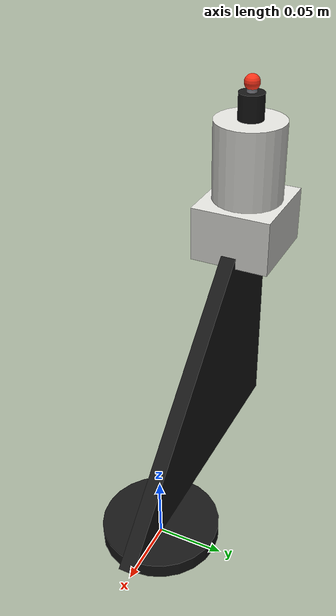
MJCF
<mujoco model="screwdriver_tool">
  <compiler angle="radian" autolimits="true"/>

  <asset>
    <material name="sd_black" rgba="0.09 0.09 0.09 1" specular="0.3" shininess="0.3"/>
    <material name="sd_white" rgba="0.88 0.88 0.86 1" specular="0.4" shininess="0.4"/>
    <material name="sd_steel" rgba="0.55 0.55 0.58 1" specular="0.8" shininess="0.7"/>

    <!-- 12 mm plate in the x-z plane; convex hull of the 6 corners is the prism. -->
    <mesh name="sd_gusset_mesh"
          vertex=" 0.055 -0.006 0.012   0.055  0.006 0.012
                  -0.185 -0.006 0.012  -0.185  0.006 0.012
                  -0.185 -0.006 0.245  -0.185  0.006 0.245"/>
  </asset>

  <worldbody>
    <body name="tool">
      <!-- adapter disc, not a wide square: a square corner sweeps into the wrist_1 envelope -->
      <geom name="mount_plate" type="cylinder" size="0.045 0.006" pos="0 0 0.006"
            mass="0.6" material="sd_black"/>
      <geom name="gusset" type="mesh" mesh="sd_gusset_mesh" mass="1.2" material="sd_black"/>
      <geom name="holder" type="box" size="0.035 0.032 0.022" pos="-0.156 0 0.196"
            mass="0.4" material="sd_white"/>
      <geom name="spindle" type="cylinder" size="0.028 0.031" pos="-0.156 0 0.249"
            mass="1.4" material="sd_white"/>
      <geom name="shaft" type="cylinder" size="0.010 0.010" pos="-0.156 0 0.290"
            mass="0.10" material="sd_black"/>
      <geom name="bit" type="cylinder" size="0.004 0.0035" pos="-0.156 0 0.3035"
            mass="0.02" material="sd_steel"/>
      <site name="tcp" pos="-0.156 0 0.307" size="0.006" rgba="1 0.2 0.1 0.9"/>
    </body>
  </worldbody>

  <!-- The whole tool's reaction on the flange, referred to the bit tip: z is the moment about the bit. -->
  <sensor>
    <force name="bit_ft_force" site="tcp"/>
    <torque name="bit_ft_torque" site="tcp"/>
  </sensor>
</mujoco>
